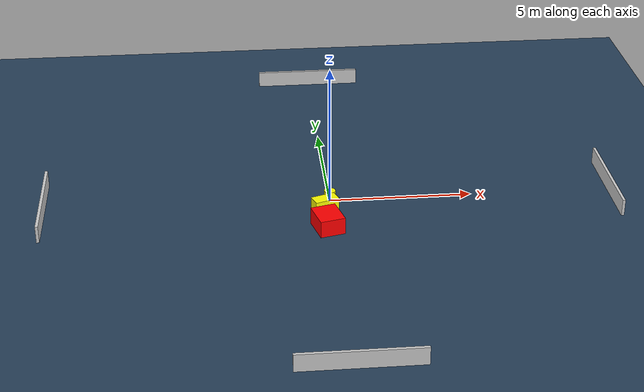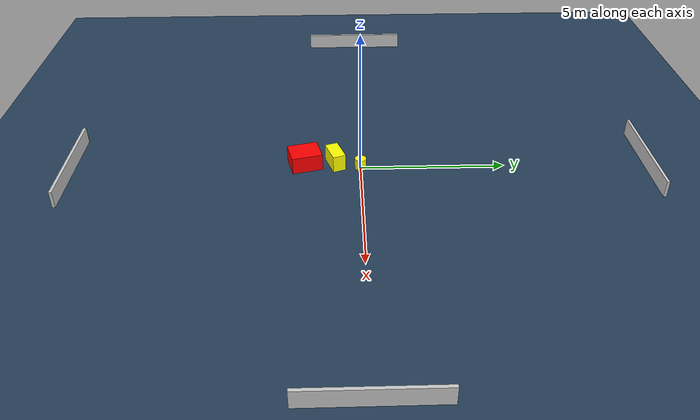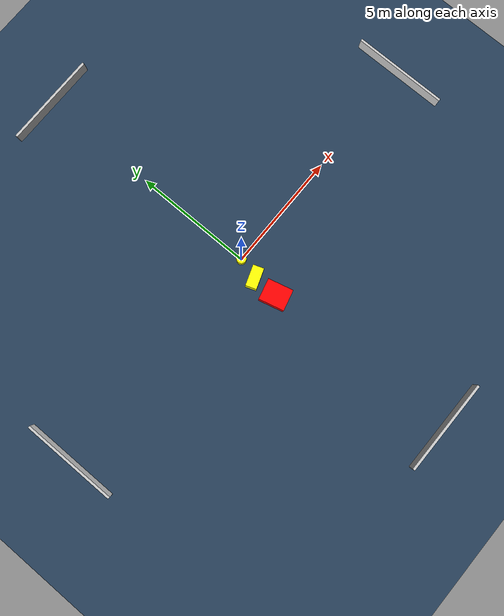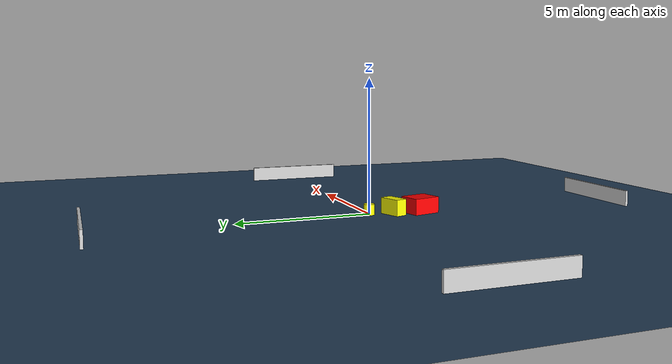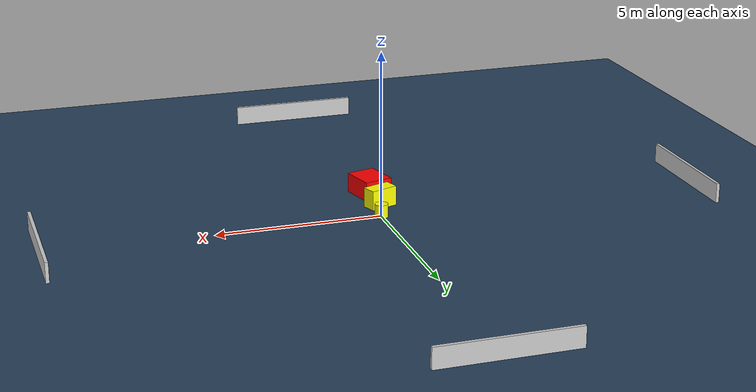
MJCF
<?xml version="1.0" ?>
<mujoco model="generated_environment">
  <option timestep="0.01" integrator="RK4" cone="elliptic"/>
  <default>
    <geom density="1"/>
  </default>
  <asset>
    <texture builtin="gradient" height="3072" name="skybox" rgb1="0.3 0.5 0.7" rgb2="0 0 0" type="skybox" width="512"/>
    <texture builtin="checker" height="300" name="groundplane" rgb1="0.2 0.3 0.4" rgb2="0.1 0.2 0.3" type="2d" width="300"/>
    <material name="groundplane" reflectance="0.2" texrepeat="5 5" texture="groundplane"/>
  </asset>
  <worldbody>
    <light dir="0 0 -1" directional="true" pos="0 0 1.5"/>
    <geom condim="3" friction="0.5 0.005 0.001" material="groundplane" name="floor" pos="0 0 0" size="0 0 0.05" type="plane"/>
    <body name="walls">
      <geom name="wall_1" condim="4" pos="-10.0 0.0 0.3" rgba="0.800000011920929 0.800000011920929 0.800000011920929 1.0" size="0.05 2.0 0.3" type="box"/>
      <geom name="wall_2" condim="4" pos="10.0 0.0 0.3" rgba="0.800000011920929 0.800000011920929 0.800000011920929 1.0" size="0.05 2.0 0.3" type="box"/>
      <geom name="wall_3" condim="4" pos="0.0 -10.0 0.3" rgba="0.800000011920929 0.800000011920929 0.800000011920929 1.0" size="2.0 0.05 0.3" type="box"/>
      <geom name="wall_4" condim="4" pos="0.0 10.0 0.3" rgba="0.800000011920929 0.800000011920929 0.800000011920929 1.0" size="2.0 0.05 0.3" type="box"/>
    </body>
    <body name="robot">
      <joint name="joint_x" type="slide" pos="0 0 0" axis="1 0 0"/>
      <joint name="joint_y" type="slide" pos="0 0 0" axis="0 1 0"/>
      <geom name="robot" type="cylinder" pos="0.0 0.0 0.2" size="0.2 0.2 0.0" mass="5.0" friction="1.0 0.005 0.0001" condim="4" rgba="1.0 1.0 0.0 1.0"/>
    </body>
    <body name="obstacle_1_movable">
      <geom name="obstacle_1_movable" condim="4" pos="-0.2435204092617117 -0.8763315719706058 0.3" euler="0 0 109.37459476442909" friction="0.0 0.005 0.001" rgba="1.0 1.0 0.0 1.0" size="0.22756174356790548 0.4358842733348166 0.3" type="box" mass="0.1"/>
      <joint type="free"/>
    </body>
    <body name="obstacle_2_static">
      <geom name="obstacle_2_static" condim="4" pos="-0.2453576194545178 -1.9396121497588878 0.3" euler="0 0 284.3532611097128" friction="0.0 0.005 0.001" rgba="1.0 0.0 0.0 1.0" size="0.5318892488896132 0.44001784645801584 0.3" type="box"/>
    </body>
  </worldbody>
  <actuator>
    <motor name="actuator_x" joint="joint_x" gear="1" ctrlrange="-1 1"/>
    <motor name="actuator_y" joint="joint_y" gear="1" ctrlrange="-1 1"/>
  </actuator>
</mujoco>
